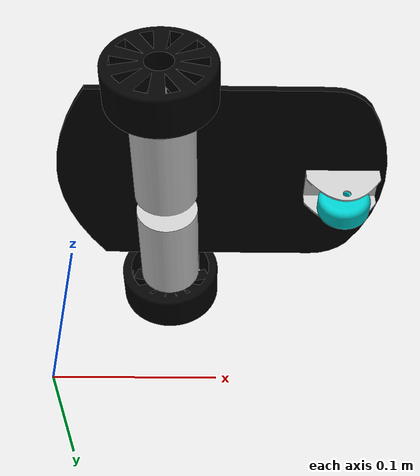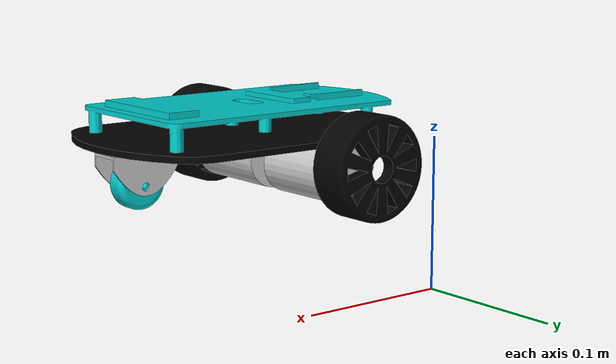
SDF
<?xml version="1.0" ?>
<sdf version="1.5">
  <model name="bnr_oneA">
  <pose>0 0 0.1 0 0 0</pose>
       <link name="base">
      <inertial>
         <pose>0.1025 -0.07 0.002 0 0 0</pose>
         <mass>0.035</mass>
         <inertia>
            <ixx>0.000001</ixx>
            <iyy>0.000001</iyy>
            <izz>0.000001</izz>
            <ixy>0</ixy>
            <ixz>0</ixz>
            <iyz>0</iyz>
         </inertia>
      </inertial>
      <pose>0 0 0.002 0 0 0</pose>
      <collision name="base_collision">
        <pose>0 0 0 1.57 0 0</pose>
        <geometry>
          <mesh>
            <uri>model://bnr_oneA/meshes/base.STL</uri>
          </mesh>
        </geometry>
      </collision>
      <visual name="base_visual">
        <pose>0.0 0.0 0 1.57 0 0</pose>
        <geometry>
          <mesh>
            <uri>model://bnr_oneA/meshes/base.STL</uri>
          </mesh>
        </geometry>
        <material>
            <ambient>0.02 0.02 0.02 1.0</ambient>
            <diffuse>0.01 0.01 0.01 1.0</diffuse>
            <specular>0.4 0.4 0.4 1.0</specular>
        </material>
      </visual>
      <gravity>true</gravity>
    </link>

   <link name="top">
      <inertial>
         <pose>0.09 -0.05125 0.01 0 0 0</pose>
         <mass>0.035</mass>
         <inertia>
            <ixx>0.000001</ixx>
            <iyy>0.000001</iyy>
            <izz>0.000001</izz>
            <ixy>0</ixy>
            <ixz>0</ixz>
            <iyz>0</iyz>
         </inertia>
      </inertial>
      <pose>0.005 -0.01875 0.006 0 0 0</pose>
      <collision name="top_collision">
        <pose>0.09 -0.05125 0.01 0 0 0</pose>
        <geometry>
          <box>
            <size>0.18 0.1025 0.02</size>
          </box>
        </geometry>
      </collision>
      <visual name="top_visual">
        <pose>0.0 0.0 0.0 1.57 0 0</pose>
        <geometry>
          <mesh>
            <uri>model://bnr_oneA/meshes/circuit.STL</uri>
          </mesh>
        </geometry>
        <material>
            <ambient>0.0 0.1 0.6 1.0</ambient>
             <diffuse>0.0 0.8 0.8 1.0</diffuse>
             <specular>0.5 0.5 0.5 1.0</specular>
        </material>
      </visual>
      <gravity>true</gravity>
    </link>

    <link name="left_motor">
    <inertial>
         <pose>0.019 -0.03 -0.018 0 0 0</pose>
         <mass>0.212</mass>
         <inertia>
            <ixx>0.000001</ixx>
            <iyy>0.000001</iyy>
            <izz>0.000001</izz>
            <ixy>0</ixy>
            <ixz>0</ixz>
            <iyz>0</iyz>
         </inertia>
      </inertial>
      <pose>0.05 -0.077 0.002 0 0 0</pose>
      <collision name="left_motor_collision">
        <pose>0.0 0.0 0.0 0.0 3.14 3.14</pose>
        <geometry>
          <mesh>
            <uri>model://bnr_oneA/meshes/motor.STL</uri>
          </mesh>
        </geometry>
      </collision>
      <visual name="left_motor_visual">
        <pose>0.0 0.0 0.0 0.0 3.14 3.14</pose>
        <geometry>
          <mesh>
            <uri>model://bnr_oneA/meshes/motor.STL</uri>
          </mesh>
        </geometry>
        <material>
            <ambient>0.2 0.2 0.2 1.0</ambient>
             <diffuse>0.8 0.8 0.8 1.0</diffuse>
             <specular>0.5 0.5 0.5 1.0</specular>
        </material>
      </visual>
      <gravity>true</gravity>
    </link>

    <link name="right_motor">
    <inertial>
         <pose>-0.019 0.03 -0.018 0 0 0</pose>
         <mass>0.212</mass>
         <inertia>
            <ixx>0.000001</ixx>
            <iyy>0.000001</iyy>
            <izz>0.000001</izz>
            <ixy>0</ixy>
            <ixz>0</ixz>
            <iyz>0</iyz>
         </inertia>
      </inertial>
      <pose>0.088 -0.063 0.002 0 0 0</pose>
      <collision name="right_motor_collision">
        <pose>0.0 0.0 0.0 0.0 3.14 0</pose>
        <geometry>
          <mesh>
            <uri>model://bnr_oneA/meshes/motor.STL</uri>
          </mesh>
        </geometry>
      </collision>
      <visual name="right_motor_visual">
        <pose>0.0 0.0 0.0 0.0 3.14 0</pose>
        <geometry>
          <mesh>
            <uri>model://bnr_oneA/meshes/motor.STL</uri>
          </mesh>
        </geometry>
        <material>
            <ambient>0.2 0.2 0.2 1.0</ambient>
             <diffuse>0.8 0.8 0.8 1.0</diffuse>
             <specular>0.5 0.5 0.5 1.0</specular>
        </material>
      </visual>
      <gravity>true</gravity>
    </link>

    <link name="left_wheel">
      <inertial>
         <pose>0.0325 0.01325 0.0325 1.57 0 0</pose>
         <mass>0.030</mass>
         <inertia>
            <ixx>0.000001</ixx>
            <iyy>0.000001</iyy>
            <izz>0.000001</izz>
            <ixy>0</ixy>
            <ixz>0</ixz>
            <iyz>0</iyz>
         </inertia>
      </inertial>
      <pose>0.036 -0.168 -0.042 0 0 0</pose>
      <collision name="left_wheel_collision">
        <pose>0.0325 0.01325 0.0325 1.57 0 0</pose>
        <geometry>
          <cylinder>
            <radius>0.0325</radius>
            <length>0.0265</length>
          </cylinder>
        </geometry>
        <surface>
          <friction>
            <ode>
              <mu>1.0</mu>
              <mu2>1.0</mu2>
              <fdir1>0 0 1</fdir1>
              <slip1>0.0</slip1>
              <slip2>0.0</slip2>
            </ode>
          </friction>
          <contact>
            <ode>
              <min_depth>0.005</min_depth>
              <kp>1e8</kp>
            </ode>
          </contact>
        </surface>
      </collision>
      <visual name="left_wheel_visual">
        <pose>0.0 0.0 0.0 0 0 0</pose>
        <geometry>
          <mesh>
            <uri>model://bnr_oneA/meshes/tyre.STL</uri>
          </mesh>
        </geometry>
        <material>
            <ambient>0.02 0.02 0.02 1.0</ambient>
            <diffuse>0.01 0.01 0.01 1.0</diffuse>
            <specular>0.4 0.4 0.4 1.0</specular>
        </material>
      </visual>
      <gravity>true</gravity>
    </link>

    <link name="right_wheel">
      <inertial>
         <pose>-0.0325 -0.01325 0.0325 1.57 0 0</pose>
         <mass>0.030</mass>
         <inertia>
            <ixx>0.000001</ixx>
            <iyy>0.000001</iyy>
            <izz>0.000001</izz>
            <ixy>0</ixy>
            <ixz>0</ixz>
            <iyz>0</iyz>
         </inertia>
      </inertial>
      <pose>0.101 0.028 -0.042 0 0 0</pose>
      <collision name="right_wheel_collision">
        <pose>-0.0325 -0.01325 0.0325 1.57 0 0</pose>
        <geometry>
          <cylinder>
            <radius>0.0325</radius>
            <length>0.0265</length>
          </cylinder>
        </geometry>
        <surface>
          <friction>
            <ode>
              <mu>1.0</mu>
              <mu2>1.0</mu2>
              <fdir1>0 0 1</fdir1>
              <slip1>0.0</slip1>
              <slip2>0.0</slip2>
            </ode>
          </friction>
          <contact>
            <ode>
              <min_depth>0.005</min_depth>
              <kp>1e8</kp>
            </ode>
          </contact>
        </surface>
      </collision>
      <visual name="right_wheel_visual">
        <pose>0.0 0.0 0.0 0 0 3.14</pose>
        <geometry>
          <mesh>
            <uri>model://bnr_oneA/meshes/tyre.STL</uri>
          </mesh>
        </geometry>
        <material>
            <ambient>0.02 0.02 0.02 1.0</ambient>
            <diffuse>0.01 0.01 0.01 1.0</diffuse>
            <specular>0.4 0.4 0.4 1.0</specular>
        </material>
      </visual>
      <gravity>true</gravity>
    </link>

    <link name="castor">
      <inertial>
         <pose>0.0225 0.0125 0.0105 0 0 0</pose>
         <mass>0.05</mass>
         <inertia>
            <ixx>0.000001</ixx>
            <iyy>0.000001</iyy>
            <izz>0.000001</izz>
            <ixy>0</ixy>
            <ixz>0</ixz>
            <iyz>0</iyz>
         </inertia>
      </inertial>
      <pose>0.1547 -0.081 0.0 -1.57 0 0</pose>
      <collision name="castor_collision">
        <pose>0.0 -0.0 0.0 0 0 0</pose>
        <geometry>
          <mesh>
            <uri>model://bnr_oneA/meshes/wheel_support.STL</uri>
          </mesh>
        </geometry>
      </collision>
      <visual name="castor_visual">
        <pose>0.0 0.0 0.0 0.0 0 0</pose>
        <geometry>
          <mesh>
            <uri>model://bnr_oneA/meshes/wheel_support.STL</uri>
          </mesh>
        </geometry>
        <material>
            <ambient>0.2 0.2 0.2 1.0</ambient>
             <diffuse>0.8 0.8 0.8 1.0</diffuse>
             <specular>0.5 0.5 0.5 1.0</specular>
        </material>
      </visual>
      <gravity>true</gravity>
    </link>

    <link name="wheel">
      <inertial>
         <pose>0.016 0.007 0.016 0 0 0</pose>
         <mass>0.01</mass>

      </inertial>
      <pose>0.1615 -0.078 -0.035 0 0 0</pose>
      <collision name="wheel_collision">
        <pose>0.0 -0.0 0.0 0 0 0</pose>
        <geometry>
          <mesh>
            <uri>model://bnr_oneA/meshes/wheel.STL</uri>
          </mesh>
        </geometry>
         <surface>
          <friction>
            <ode>
              <mu>0.3</mu>
              <mu2>0.3</mu2>
              <slip1>0.6</slip1>
              <slip2>0.6</slip2>
            </ode>
          </friction>
        </surface>
      </collision>
      <visual name="wheel_visual">
        <pose>0.0 0.0 0.0 0.0 0 0</pose>
        <geometry>
          <mesh>
            <uri>model://bnr_oneA/meshes/wheel.STL</uri>
          </mesh>
        </geometry>
        <material>
            <ambient>0.0 0.1 0.6 1.0</ambient>
             <diffuse>0.0 0.8 0.8 1.0</diffuse>
             <specular>0.5 0.5 0.5 1.0</specular>
        </material>
      </visual>
      <gravity>true</gravity>
    </link>

    <joint type="fixed" name="plastic_bolts">
        <pose>0.1025 -0.05125 0.004 0 0 0</pose>
        <child>top</child>
        <parent>base</parent>
        <axis>
          <xyz>0 0 1</xyz>
        </axis>
    </joint>
    <joint type="fixed" name="left_motor_bolts">
        <pose>0.02 -0.05 0.004 0 0 0</pose>
        <child>left_motor</child>
        <parent>base</parent>
        <axis>
          <xyz>0 0 1</xyz>
        </axis>
    </joint>
    <joint type="fixed" name="rigth_motor_bolts">
        <pose>-0.02 0.05 0.004 0 0 0</pose>
        <child>right_motor</child>
        <parent>base</parent>
        <axis>
          <xyz>0 0 1</xyz>
        </axis>
    </joint>
    <joint type="fixed" name="castor_bolts">
        <pose>0.0225 0.0 0.01 0 0 0</pose>
        <child>castor</child>
        <parent>base</parent>
        <axis>
          <xyz>0 0 1</xyz>
        </axis>
    </joint>

    <joint type="revolute" name="left_wheel_joint">
    <pose>0.0325 0.0 0.0325 0 0 0</pose>
      <child>left_wheel</child>
      <parent>base</parent>
      <axis>
        <xyz>0 1 0</xyz>
        <use_parent_model_frame>true</use_parent_model_frame>
      </axis>
    </joint>

    <joint type="revolute" name="right_wheel_joint">
    <pose>-0.0325 0.0 0.0325 0 0 0</pose>
      <child>right_wheel</child>
      <parent>base</parent>
      <axis>
        <xyz>0 1 0</xyz>
        <use_parent_model_frame>true</use_parent_model_frame>
      </axis>
    </joint>

    <joint type="revolute" name="wheel_joint">
    <pose>0.016 0.0 0.016 0 0 0</pose>
      <child>wheel</child>
      <parent>castor</parent>
      <axis>
        <xyz>0 1 0</xyz>
        <use_parent_model_frame>true</use_parent_model_frame>
      </axis>
    </joint>

  </model>
</sdf>
